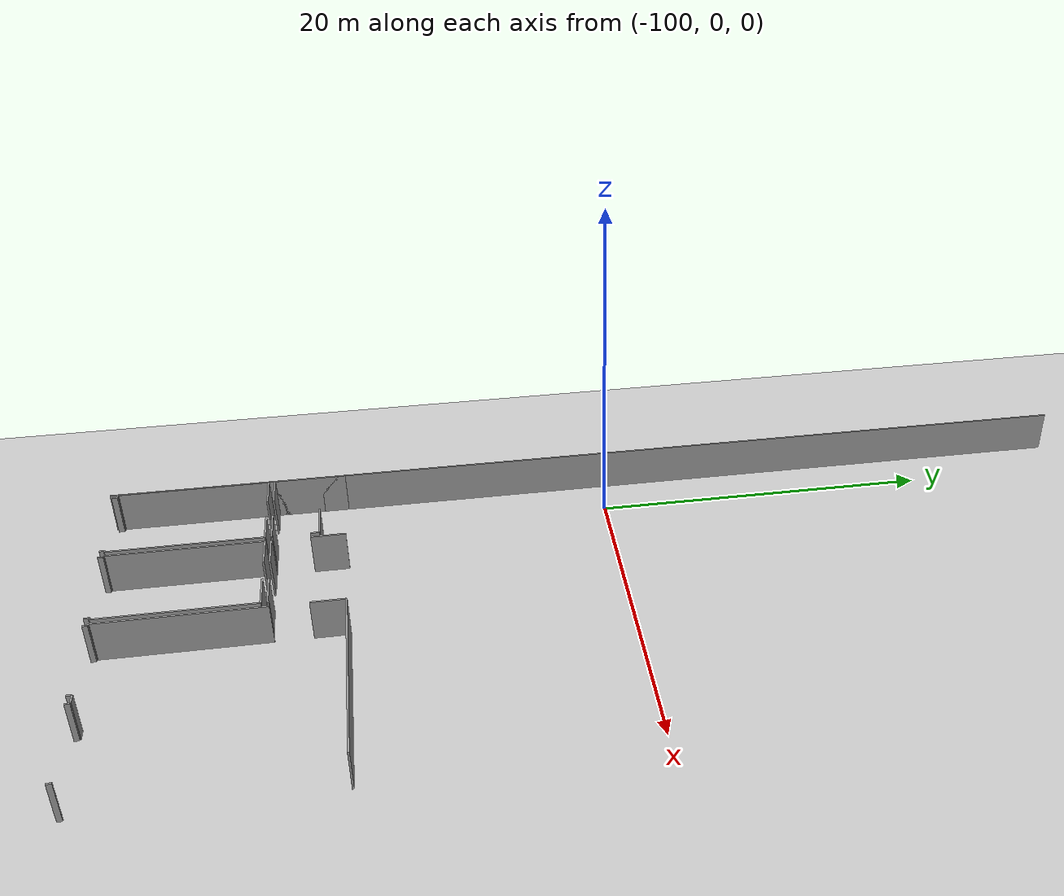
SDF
<sdf version="1.6">
 <world name="default">
  <model name="ground_plane">
   <static>1</static>
   <link name="link">
    <collision name="collision">
     <geometry><plane><normal>0 0 1</normal><size>100 100</size></plane></geometry>
     <surface><friction><ode><mu>100</mu><mu2>50</mu2></ode></friction></surface>
    </collision>
    <visual name="visual">
     <cast_shadows>0</cast_shadows>
     <geometry><plane><normal>0 0 1</normal><size>100 100</size></plane></geometry>
     <material>
      <script><uri>file://media/materials/scripts/gazebo.material</uri><name>Gazebo/Grey</name></script>
     </material>
    </visual>
   </link>
  </model>
  <model name="50010536_PLAN3">
   <static>1</static>
   <link name="Wall_108">
    <collision name="Wall_108_Collision">
     <geometry><box><size>0.802209313399 0.1 2.5</size></box></geometry>
     <pose>0.401104656699 0 1.25 0 0 0</pose>
    </collision>
    <visual name="Wall_108_Visual">
     <pose>0.401104656699 0 1.25 0 0 0</pose>
     <geometry><box><size>0.802209313399 0.1 2.5</size></box></geometry>
     <material>
      <script><uri>file://media/materials/scripts/gazebo.material</uri><name>Gazebo/Grey</name></script>
      <ambient>1 1 1 1</ambient>
     </material>
    </visual>
    <pose>0.0 -49.5950734851 0 0 0 1.57079632679</pose>
   </link>
   <link name="Wall_109">
    <collision name="Wall_109_Collision">
     <geometry><box><size>1.44570358379 0.1 2.5</size></box></geometry>
     <pose>0.722851791893 0 1.25 0 0 0</pose>
    </collision>
    <visual name="Wall_109_Visual">
     <pose>0.722851791893 0 1.25 0 0 0</pose>
     <geometry><box><size>1.44570358379 0.1 2.5</size></box></geometry>
     <material>
      <script><uri>file://media/materials/scripts/gazebo.material</uri><name>Gazebo/Grey</name></script>
      <ambient>1 1 1 1</ambient>
     </material>
    </visual>
    <pose>0.0 -46.8021966162 0 0 0 1.57079632679</pose>
   </link>
   <link name="Wall_113">
    <collision name="Wall_113_Collision">
     <geometry><box><size>2.32257245342 0.1 2.5</size></box></geometry>
     <pose>1.16128622671 0 1.25 0 0 0</pose>
    </collision>
    <visual name="Wall_113_Visual">
     <pose>1.16128622671 0 1.25 0 0 0</pose>
     <geometry><box><size>2.32257245342 0.1 2.5</size></box></geometry>
     <material>
      <script><uri>file://media/materials/scripts/gazebo.material</uri><name>Gazebo/Grey</name></script>
      <ambient>1 1 1 1</ambient>
     </material>
    </visual>
    <pose>3.37593245088 -46.8847284386 0 0 0 0.0</pose>
   </link>
   <link name="Wall_114">
    <collision name="Wall_114_Collision">
     <geometry><box><size>0.516268291909 0.1 2.5</size></box></geometry>
     <pose>0.258134145954 0 1.25 0 0 0</pose>
    </collision>
    <visual name="Wall_114_Visual">
     <pose>0.258134145954 0 1.25 0 0 0</pose>
     <geometry><box><size>0.516268291909 0.1 2.5</size></box></geometry>
     <material>
      <script><uri>file://media/materials/scripts/gazebo.material</uri><name>Gazebo/Grey</name></script>
      <ambient>1 1 1 1</ambient>
     </material>
    </visual>
    <pose>5.69850490429 -46.8847284386 0 0 0 -1.57079632679</pose>
   </link>
   <link name="Wall_115">
    <collision name="Wall_115_Collision">
     <geometry><box><size>0.0655175697553 0.1 2.5</size></box></geometry>
     <pose>0.0327587848776 0 1.25 0 0 0</pose>
    </collision>
    <visual name="Wall_115_Visual">
     <pose>0.0327587848776 0 1.25 0 0 0</pose>
     <geometry><box><size>0.0655175697553 0.1 2.5</size></box></geometry>
     <material>
      <script><uri>file://media/materials/scripts/gazebo.material</uri><name>Gazebo/Grey</name></script>
      <ambient>1 1 1 1</ambient>
     </material>
    </visual>
    <pose>5.69850490429 -49.528286195 0 0 0 -1.57079632679</pose>
   </link>
   <link name="Wall_116">
    <collision name="Wall_116_Collision">
     <geometry><box><size>2.1125607085 0.1 2.5</size></box></geometry>
     <pose>1.05628035425 0 1.25 0 0 0</pose>
    </collision>
    <visual name="Wall_116_Visual">
     <pose>1.05628035425 0 1.25 0 0 0</pose>
     <geometry><box><size>2.1125607085 0.1 2.5</size></box></geometry>
     <material>
      <script><uri>file://media/materials/scripts/gazebo.material</uri><name>Gazebo/Grey</name></script>
      <ambient>1 1 1 1</ambient>
     </material>
    </visual>
    <pose>5.69850490429 -49.5938037647 0 0 0 3.14159265359</pose>
   </link>
   <link name="Wall_117">
    <collision name="Wall_117_Collision">
     <geometry><box><size>2.04780536459 0.1 2.5</size></box></geometry>
     <pose>1.0239026823 0 1.25 0 0 0</pose>
    </collision>
    <visual name="Wall_117_Visual">
     <pose>1.0239026823 0 1.25 0 0 0</pose>
     <geometry><box><size>2.04780536459 0.1 2.5</size></box></geometry>
     <material>
      <script><uri>file://media/materials/scripts/gazebo.material</uri><name>Gazebo/Grey</name></script>
      <ambient>1 1 1 1</ambient>
     </material>
    </visual>
    <pose>2.04780497096 -49.5938037647 0 0 0 -3.14097261399</pose>
   </link>
   <link name="Wall_118">
    <collision name="Wall_118_Collision">
     <geometry><box><size>8.88067803066 0.1 2.5</size></box></geometry>
     <pose>4.44033901533 0 1.25 0 0 0</pose>
    </collision>
    <visual name="Wall_118_Visual">
     <pose>4.44033901533 0 1.25 0 0 0</pose>
     <geometry><box><size>8.88067803066 0.1 2.5</size></box></geometry>
     <material>
      <script><uri>file://media/materials/scripts/gazebo.material</uri><name>Gazebo/Grey</name></script>
      <ambient>1 1 1 1</ambient>
     </material>
    </visual>
    <pose>0.0218391899184 -58.8416849189 0 0 0 1.57079632679</pose>
   </link>
   <link name="Wall_119">
    <collision name="Wall_119_Collision">
     <geometry><box><size>2.08259530838 0.1 2.5</size></box></geometry>
     <pose>1.04129765419 0 1.25 0 0 0</pose>
    </collision>
    <visual name="Wall_119_Visual">
     <pose>1.04129765419 0 1.25 0 0 0</pose>
     <geometry><box><size>2.08259530838 0.1 2.5</size></box></geometry>
     <material>
      <script><uri>file://media/materials/scripts/gazebo.material</uri><name>Gazebo/Grey</name></script>
      <ambient>1 1 1 1</ambient>
     </material>
    </visual>
    <pose>0.0218391899184 -49.9610068882 0 0 0 0.0</pose>
   </link>
   <link name="Wall_120">
    <collision name="Wall_120_Collision">
     <geometry><box><size>2.10062533727 0.1 2.5</size></box></geometry>
     <pose>1.05031266863 0 1.25 0 0 0</pose>
    </collision>
    <visual name="Wall_120_Visual">
     <pose>1.05031266863 0 1.25 0 0 0</pose>
     <geometry><box><size>2.10062533727 0.1 2.5</size></box></geometry>
     <material>
      <script><uri>file://media/materials/scripts/gazebo.material</uri><name>Gazebo/Grey</name></script>
      <ambient>1 1 1 1</ambient>
     </material>
    </visual>
    <pose>3.60321239247 -49.9610068882 0 0 0 0.0</pose>
   </link>
   <link name="Wall_121">
    <collision name="Wall_121_Collision">
     <geometry><box><size>8.91724597657 0.1 2.5</size></box></geometry>
     <pose>4.45862298829 0 1.25 0 0 0</pose>
    </collision>
    <visual name="Wall_121_Visual">
     <pose>4.45862298829 0 1.25 0 0 0</pose>
     <geometry><box><size>8.91724597657 0.1 2.5</size></box></geometry>
     <material>
      <script><uri>file://media/materials/scripts/gazebo.material</uri><name>Gazebo/Grey</name></script>
      <ambient>1 1 1 1</ambient>
     </material>
    </visual>
    <pose>5.70383772974 -49.9610068882 0 0 0 -1.57079632679</pose>
   </link>
   <link name="Wall_122">
    <collision name="Wall_122_Collision">
     <geometry><box><size>0.0990381868394 0.1 2.5</size></box></geometry>
     <pose>0.0495190934197 0 1.25 0 0 0</pose>
    </collision>
    <visual name="Wall_122_Visual">
     <pose>0.0495190934197 0 1.25 0 0 0</pose>
     <geometry><box><size>0.0990381868394 0.1 2.5</size></box></geometry>
     <material>
      <script><uri>file://media/materials/scripts/gazebo.material</uri><name>Gazebo/Grey</name></script>
      <ambient>1 1 1 1</ambient>
     </material>
    </visual>
    <pose>5.70383772974 -58.8782528648 0 0 0 3.14159265359</pose>
   </link>
   <link name="Wall_123">
    <collision name="Wall_123_Collision">
     <geometry><box><size>0.312097260578 0.1 2.5</size></box></geometry>
     <pose>0.156048630289 0 1.25 0 0 0</pose>
    </collision>
    <visual name="Wall_123_Visual">
     <pose>0.156048630289 0 1.25 0 0 0</pose>
     <geometry><box><size>0.312097260578 0.1 2.5</size></box></geometry>
     <material>
      <script><uri>file://media/materials/scripts/gazebo.material</uri><name>Gazebo/Grey</name></script>
      <ambient>1 1 1 1</ambient>
     </material>
    </visual>
    <pose>5.6047995429 -58.8782528648 0 0 0 -1.57079632679</pose>
   </link>
   <link name="Wall_124">
    <collision name="Wall_124_Collision">
     <geometry><box><size>0.347395486144 0.1 2.5</size></box></geometry>
     <pose>0.173697743072 0 1.25 0 0 0</pose>
    </collision>
    <visual name="Wall_124_Visual">
     <pose>0.173697743072 0 1.25 0 0 0</pose>
     <geometry><box><size>0.347395486144 0.1 2.5</size></box></geometry>
     <material>
      <script><uri>file://media/materials/scripts/gazebo.material</uri><name>Gazebo/Grey</name></script>
      <ambient>1 1 1 1</ambient>
     </material>
    </visual>
    <pose>0.249627019649 -59.1903501254 0 0 0 1.57079632679</pose>
   </link>
   <link name="Wall_125">
    <collision name="Wall_125_Collision">
     <geometry><box><size>0.2277913685 0.1 2.5</size></box></geometry>
     <pose>0.11389568425 0 1.25 0 0 0</pose>
    </collision>
    <visual name="Wall_125_Visual">
     <pose>0.11389568425 0 1.25 0 0 0</pose>
     <geometry><box><size>0.2277913685 0.1 2.5</size></box></geometry>
     <material>
      <script><uri>file://media/materials/scripts/gazebo.material</uri><name>Gazebo/Grey</name></script>
      <ambient>1 1 1 1</ambient>
     </material>
    </visual>
    <pose>0.249627019649 -58.8429546392 0 0 0 3.13601857531</pose>
   </link>
   <link name="Wall_128">
    <collision name="Wall_128_Collision">
     <geometry><box><size>0.0873567596737 0.1 2.5</size></box></geometry>
     <pose>0.0436783798368 0 1.25 0 0 0</pose>
    </collision>
    <visual name="Wall_128_Visual">
     <pose>0.0436783798368 0 1.25 0 0 0</pose>
     <geometry><box><size>0.0873567596737 0.1 2.5</size></box></geometry>
     <material>
      <script><uri>file://media/materials/scripts/gazebo.material</uri><name>Gazebo/Grey</name></script>
      <ambient>1 1 1 1</ambient>
     </material>
    </visual>
    <pose>11.6989493064 -49.5094943339 0 0 0 -1.57079632679</pose>
   </link>
   <link name="Wall_129">
    <collision name="Wall_129_Collision">
     <geometry><box><size>2.12170269498 0.1 2.5</size></box></geometry>
     <pose>1.06085134749 0 1.25 0 0 0</pose>
    </collision>
    <visual name="Wall_129_Visual">
     <pose>1.06085134749 0 1.25 0 0 0</pose>
     <geometry><box><size>2.12170269498 0.1 2.5</size></box></geometry>
     <material>
      <script><uri>file://media/materials/scripts/gazebo.material</uri><name>Gazebo/Grey</name></script>
      <ambient>1 1 1 1</ambient>
     </material>
    </visual>
    <pose>11.6989493064 -49.5968510935 0 0 0 3.14159265359</pose>
   </link>
   <link name="Wall_130">
    <collision name="Wall_130_Collision">
     <geometry><box><size>2.00082531822 0.1 2.5</size></box></geometry>
     <pose>1.00041265911 0 1.25 0 0 0</pose>
    </collision>
    <visual name="Wall_130_Visual">
     <pose>1.00041265911 0 1.25 0 0 0</pose>
     <geometry><box><size>2.00082531822 0.1 2.5</size></box></geometry>
     <material>
      <script><uri>file://media/materials/scripts/gazebo.material</uri><name>Gazebo/Grey</name></script>
      <ambient>1 1 1 1</ambient>
     </material>
    </visual>
    <pose>8.08380154271 -49.5968510935 0 0 0 3.14159265359</pose>
   </link>
   <link name="Wall_131">
    <collision name="Wall_131_Collision">
     <geometry><box><size>0.0898962003619 0.1 2.5</size></box></geometry>
     <pose>0.0449481001809 0 1.25 0 0 0</pose>
    </collision>
    <visual name="Wall_131_Visual">
     <pose>0.0449481001809 0 1.25 0 0 0</pose>
     <geometry><box><size>0.0898962003619 0.1 2.5</size></box></geometry>
     <material>
      <script><uri>file://media/materials/scripts/gazebo.material</uri><name>Gazebo/Grey</name></script>
      <ambient>1 1 1 1</ambient>
     </material>
    </visual>
    <pose>6.08297622449 -49.5968510935 0 0 0 1.57079632679</pose>
   </link>
   <link name="Wall_132">
    <collision name="Wall_132_Collision">
     <geometry><box><size>2.01785697229 0.1 2.5</size></box></geometry>
     <pose>1.00892848614 0 1.25 0 0 0</pose>
    </collision>
    <visual name="Wall_132_Visual">
     <pose>1.00892848614 0 1.25 0 0 0</pose>
     <geometry><box><size>2.01785697229 0.1 2.5</size></box></geometry>
     <material>
      <script><uri>file://media/materials/scripts/gazebo.material</uri><name>Gazebo/Grey</name></script>
      <ambient>1 1 1 1</ambient>
     </material>
    </visual>
    <pose>6.08297622449 -47.3761102117 0 0 0 1.57494933589</pose>
   </link>
   <link name="Wall_133">
    <collision name="Wall_133_Collision">
     <geometry><box><size>8.91851569692 0.1 2.5</size></box></geometry>
     <pose>4.45925784846 0 1.25 0 0 0</pose>
    </collision>
    <visual name="Wall_133_Visual">
     <pose>4.45925784846 0 1.25 0 0 0</pose>
     <geometry><box><size>8.91851569692 0.1 2.5</size></box></geometry>
     <material>
      <script><uri>file://media/materials/scripts/gazebo.material</uri><name>Gazebo/Grey</name></script>
      <ambient>1 1 1 1</ambient>
     </material>
    </visual>
    <pose>6.08526172111 -58.875205536 0 0 0 1.57079632679</pose>
   </link>
   <link name="Wall_134">
    <collision name="Wall_134_Collision">
     <geometry><box><size>2.0132685776 0.1 2.5</size></box></geometry>
     <pose>1.0066342888 0 1.25 0 0 0</pose>
    </collision>
    <visual name="Wall_134_Visual">
     <pose>1.0066342888 0 1.25 0 0 0</pose>
     <geometry><box><size>2.0132685776 0.1 2.5</size></box></geometry>
     <material>
      <script><uri>file://media/materials/scripts/gazebo.material</uri><name>Gazebo/Grey</name></script>
      <ambient>1 1 1 1</ambient>
     </material>
    </visual>
    <pose>6.08526172111 -49.9566898391 0 0 0 0.0</pose>
   </link>
   <link name="Wall_135">
    <collision name="Wall_135_Collision">
     <geometry><box><size>2.13643145097 0.1 2.5</size></box></geometry>
     <pose>1.06821572549 0 1.25 0 0 0</pose>
    </collision>
    <visual name="Wall_135_Visual">
     <pose>1.06821572549 0 1.25 0 0 0</pose>
     <geometry><box><size>2.13643145097 0.1 2.5</size></box></geometry>
     <material>
      <script><uri>file://media/materials/scripts/gazebo.material</uri><name>Gazebo/Grey</name></script>
      <ambient>1 1 1 1</ambient>
     </material>
    </visual>
    <pose>9.58842015046 -49.9566898391 0 0 0 0.0</pose>
   </link>
   <link name="Wall_136">
    <collision name="Wall_136_Collision">
     <geometry><box><size>8.91394470368 0.1 2.5</size></box></geometry>
     <pose>4.45697235184 0 1.25 0 0 0</pose>
    </collision>
    <visual name="Wall_136_Visual">
     <pose>4.45697235184 0 1.25 0 0 0</pose>
     <geometry><box><size>8.91394470368 0.1 2.5</size></box></geometry>
     <material>
      <script><uri>file://media/materials/scripts/gazebo.material</uri><name>Gazebo/Grey</name></script>
      <ambient>1 1 1 1</ambient>
     </material>
    </visual>
    <pose>11.7248516014 -49.9566898391 0 0 0 -1.57079632679</pose>
   </link>
   <link name="Wall_137">
    <collision name="Wall_137_Collision">
     <geometry><box><size>0.133574580199 0.1 2.5</size></box></geometry>
     <pose>0.0667872900994 0 1.25 0 0 0</pose>
    </collision>
    <visual name="Wall_137_Visual">
     <pose>0.0667872900994 0 1.25 0 0 0</pose>
     <geometry><box><size>0.133574580199 0.1 2.5</size></box></geometry>
     <material>
      <script><uri>file://media/materials/scripts/gazebo.material</uri><name>Gazebo/Grey</name></script>
      <ambient>1 1 1 1</ambient>
     </material>
    </visual>
    <pose>11.7248516014 -58.8706345427 0 0 0 3.14159265359</pose>
   </link>
   <link name="Wall_138">
    <collision name="Wall_138_Collision">
     <geometry><box><size>0.327333904708 0.1 2.5</size></box></geometry>
     <pose>0.163666952354 0 1.25 0 0 0</pose>
    </collision>
    <visual name="Wall_138_Visual">
     <pose>0.163666952354 0 1.25 0 0 0</pose>
     <geometry><box><size>0.327333904708 0.1 2.5</size></box></geometry>
     <material>
      <script><uri>file://media/materials/scripts/gazebo.material</uri><name>Gazebo/Grey</name></script>
      <ambient>1 1 1 1</ambient>
     </material>
    </visual>
    <pose>11.5912770212 -58.8706345427 0 0 0 -1.57079632679</pose>
   </link>
   <link name="Wall_139">
    <collision name="Wall_139_Collision">
     <geometry><box><size>0.311589372441 0.1 2.5</size></box></geometry>
     <pose>0.15579468622 0 1.25 0 0 0</pose>
    </collision>
    <visual name="Wall_139_Visual">
     <pose>0.15579468622 0 1.25 0 0 0</pose>
     <geometry><box><size>0.311589372441 0.1 2.5</size></box></geometry>
     <material>
      <script><uri>file://media/materials/scripts/gazebo.material</uri><name>Gazebo/Grey</name></script>
      <ambient>1 1 1 1</ambient>
     </material>
    </visual>
    <pose>6.19471161477 -59.1979684474 0 0 0 1.57079632679</pose>
   </link>
   <link name="Wall_140">
    <collision name="Wall_140_Collision">
     <geometry><box><size>0.110018758386 0.1 2.5</size></box></geometry>
     <pose>0.055009379193 0 1.25 0 0 0</pose>
    </collision>
    <visual name="Wall_140_Visual">
     <pose>0.055009379193 0 1.25 0 0 0</pose>
     <geometry><box><size>0.110018758386 0.1 2.5</size></box></geometry>
     <material>
      <script><uri>file://media/materials/scripts/gazebo.material</uri><name>Gazebo/Grey</name></script>
      <ambient>1 1 1 1</ambient>
     </material>
    </visual>
    <pose>6.19471161477 -58.886379075 0 0 0 3.03985693927</pose>
   </link>
   <link name="Wall_141">
    <collision name="Wall_141_Collision">
     <geometry><box><size>9.40050153954 0.1 2.5</size></box></geometry>
     <pose>4.70025076977 0 1.25 0 0 0</pose>
    </collision>
    <visual name="Wall_141_Visual">
     <pose>4.70025076977 0 1.25 0 0 0</pose>
     <geometry><box><size>9.40050153954 0.1 2.5</size></box></geometry>
     <material>
      <script><uri>file://media/materials/scripts/gazebo.material</uri><name>Gazebo/Grey</name></script>
      <ambient>1 1 1 1</ambient>
     </material>
    </visual>
    <pose>12.0890073961 -58.8810462496 0 0 0 1.57079632679</pose>
   </link>
   <link name="Wall_142">
    <collision name="Wall_142_Collision">
     <geometry><box><size>1.97847824017 0.1 2.5</size></box></geometry>
     <pose>0.989239120084 0 1.25 0 0 0</pose>
    </collision>
    <visual name="Wall_142_Visual">
     <pose>0.989239120084 0 1.25 0 0 0</pose>
     <geometry><box><size>1.97847824017 0.1 2.5</size></box></geometry>
     <material>
      <script><uri>file://media/materials/scripts/gazebo.material</uri><name>Gazebo/Grey</name></script>
      <ambient>1 1 1 1</ambient>
     </material>
    </visual>
    <pose>12.0890073961 -47.3557946862 0 0 0 1.57079632679</pose>
   </link>
   <link name="Wall_143">
    <collision name="Wall_143_Collision">
     <geometry><box><size>11.6166714281 0.1 2.5</size></box></geometry>
     <pose>5.80833571406 0 1.25 0 0 0</pose>
    </collision>
    <visual name="Wall_143_Visual">
     <pose>5.80833571406 0 1.25 0 0 0</pose>
     <geometry><box><size>11.6166714281 0.1 2.5</size></box></geometry>
     <material>
      <script><uri>file://media/materials/scripts/gazebo.material</uri><name>Gazebo/Grey</name></script>
      <ambient>1 1 1 1</ambient>
     </material>
    </visual>
    <pose>12.0890073961 -45.3773164461 0 0 0 0.0</pose>
   </link>
   <link name="Wall_147">
    <collision name="Wall_147_Collision">
     <geometry><box><size>0.299146113069 0.1 2.5</size></box></geometry>
     <pose>0.149573056534 0 1.25 0 0 0</pose>
    </collision>
    <visual name="Wall_147_Visual">
     <pose>0.149573056534 0 1.25 0 0 0</pose>
     <geometry><box><size>0.299146113069 0.1 2.5</size></box></geometry>
     <material>
      <script><uri>file://media/materials/scripts/gazebo.material</uri><name>Gazebo/Grey</name></script>
      <ambient>1 1 1 1</ambient>
     </material>
    </visual>
    <pose>23.5665174745 -58.875205536 0 0 0 -1.57079632679</pose>
   </link>
   <link name="Wall_148">
    <collision name="Wall_148_Collision">
     <geometry><box><size>0.29660667238 0.1 2.5</size></box></geometry>
     <pose>0.14830333619 0 1.25 0 0 0</pose>
    </collision>
    <visual name="Wall_148_Visual">
     <pose>0.14830333619 0 1.25 0 0 0</pose>
     <geometry><box><size>0.29660667238 0.1 2.5</size></box></geometry>
     <material>
      <script><uri>file://media/materials/scripts/gazebo.material</uri><name>Gazebo/Grey</name></script>
      <ambient>1 1 1 1</ambient>
     </material>
    </visual>
    <pose>18.2179474971 -59.174351649 0 0 0 1.57079632679</pose>
   </link>
   <link name="Wall_149">
    <collision name="Wall_149_Collision">
     <geometry><box><size>0.618353807574 0.1 2.5</size></box></geometry>
     <pose>0.309176903787 0 1.25 0 0 0</pose>
    </collision>
    <visual name="Wall_149_Visual">
     <pose>0.309176903787 0 1.25 0 0 0</pose>
     <geometry><box><size>0.618353807574 0.1 2.5</size></box></geometry>
     <material>
      <script><uri>file://media/materials/scripts/gazebo.material</uri><name>Gazebo/Grey</name></script>
      <ambient>1 1 1 1</ambient>
     </material>
    </visual>
    <pose>18.2179474971 -58.8777449767 0 0 0 3.14159265359</pose>
   </link>
   <link name="Wall_150">
    <collision name="Wall_150_Collision">
     <geometry><box><size>0.306764435133 0.1 2.5</size></box></geometry>
     <pose>0.153382217567 0 1.25 0 0 0</pose>
    </collision>
    <visual name="Wall_150_Visual">
     <pose>0.153382217567 0 1.25 0 0 0</pose>
     <geometry><box><size>0.306764435133 0.1 2.5</size></box></geometry>
     <material>
      <script><uri>file://media/materials/scripts/gazebo.material</uri><name>Gazebo/Grey</name></script>
      <ambient>1 1 1 1</ambient>
     </material>
    </visual>
    <pose>17.5995936895 -58.8777449767 0 0 0 -1.57079632679</pose>
   </link>
   <link name="Wall_151">
    <collision name="Wall_151_Collision">
     <geometry><box><size>0.300669777482 0.1 2.5</size></box></geometry>
     <pose>0.150334888741 0 1.25 0 0 0</pose>
    </collision>
    <visual name="Wall_151_Visual">
     <pose>0.150334888741 0 1.25 0 0 0</pose>
     <geometry><box><size>0.300669777482 0.1 2.5</size></box></geometry>
     <material>
      <script><uri>file://media/materials/scripts/gazebo.material</uri><name>Gazebo/Grey</name></script>
      <ambient>1 1 1 1</ambient>
     </material>
    </visual>
    <pose>12.2274069136 -59.1845094118 0 0 0 1.57079632679</pose>
   </link>
   <link name="Wall_152">
    <collision name="Wall_152_Collision">
     <geometry><box><size>0.138427704757 0.1 2.5</size></box></geometry>
     <pose>0.0692138523786 0 1.25 0 0 0</pose>
    </collision>
    <visual name="Wall_152_Visual">
     <pose>0.0692138523786 0 1.25 0 0 0</pose>
     <geometry><box><size>0.138427704757 0.1 2.5</size></box></geometry>
     <material>
      <script><uri>file://media/materials/scripts/gazebo.material</uri><name>Gazebo/Grey</name></script>
      <ambient>1 1 1 1</ambient>
     </material>
    </visual>
    <pose>12.2274069136 -58.8838396343 0 0 0 3.12141190742</pose>
   </link>
   <link name="Wall_972">
    <collision name="Wall_972_Collision">
     <geometry><box><size>59.3000539631 0.1 2.5</size></box></geometry>
     <pose>29.6500269816 0 1.25 0 0 0</pose>
    </collision>
    <visual name="Wall_972_Visual">
     <pose>29.6500269816 0 1.25 0 0 0</pose>
     <geometry><box><size>59.3000539631 0.1 2.5</size></box></geometry>
     <material>
      <script><uri>file://media/materials/scripts/gazebo.material</uri><name>Gazebo/Grey</name></script>
      <ambient>1 1 1 1</ambient>
     </material>
    </visual>
    <pose>0.0 -59.3000539631 0 0 0 1.57079632679</pose>
   </link>
   <pose>-102.5 29.6500539631 0 0 0 0</pose>
  </model>
 </world>
</sdf>
